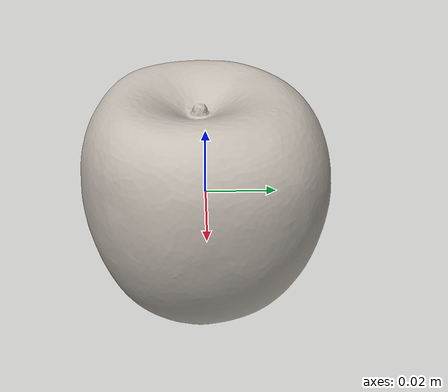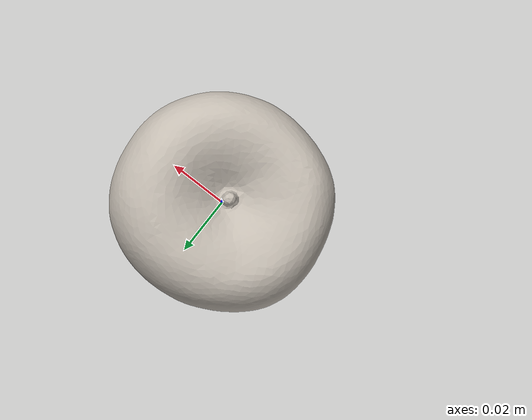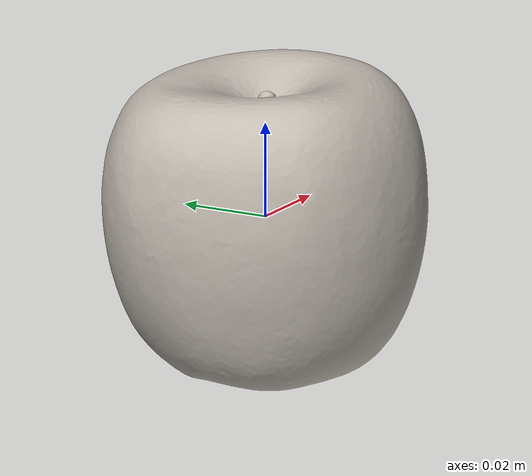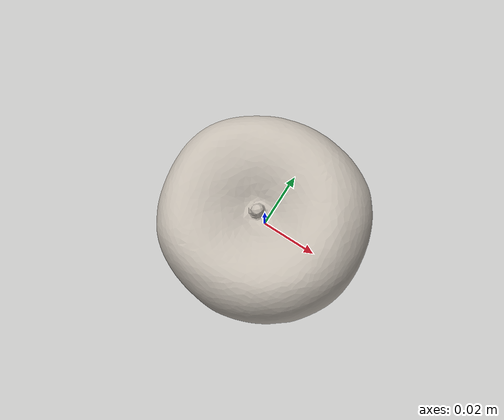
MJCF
<mujoco model="apple">
  <compiler angle="radian" />
  <default>
    <default class="visual">
      <geom group="1" type="mesh" contype="0" conaffinity="0" />
    </default>
    <default class="collision">
      <geom group="3" solref="0.001 2" />
    </default>
    <default class="keypoint">
      <site type="sphere" size="0.01" group="3" rgba="1 0 0 1" />
    </default>
    <default class="grasppoint">
      <site type="sphere" size="0.01" group="4" rgba="0 0 1 0.2" />
    </default>
  </default>
  <asset>
    <texture name="apple" file="./texture_map.png" type="2d" />
    <material name="apple" texture="apple" specular="1" shininess="1" />
    <mesh name="apple" file="./apple.obj" scale="0.90000 0.90000 0.90000" />
  </asset>
  <worldbody>
    <geom class="visual" type="mesh" material="apple" mesh="apple" />
    <geom class="collision" type="mesh" material="apple" mesh="apple" />
    <site class="grasppoint" pos="0.00000 0.00000 0.00000" />
  </worldbody>
</mujoco>
